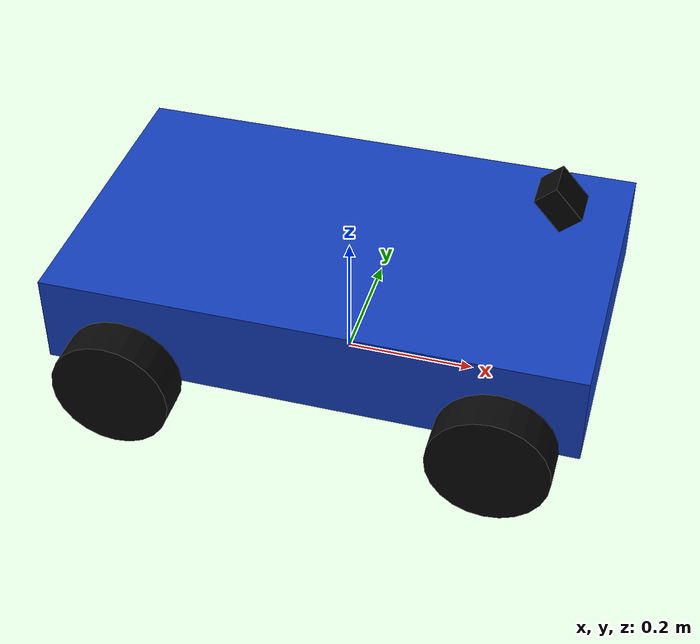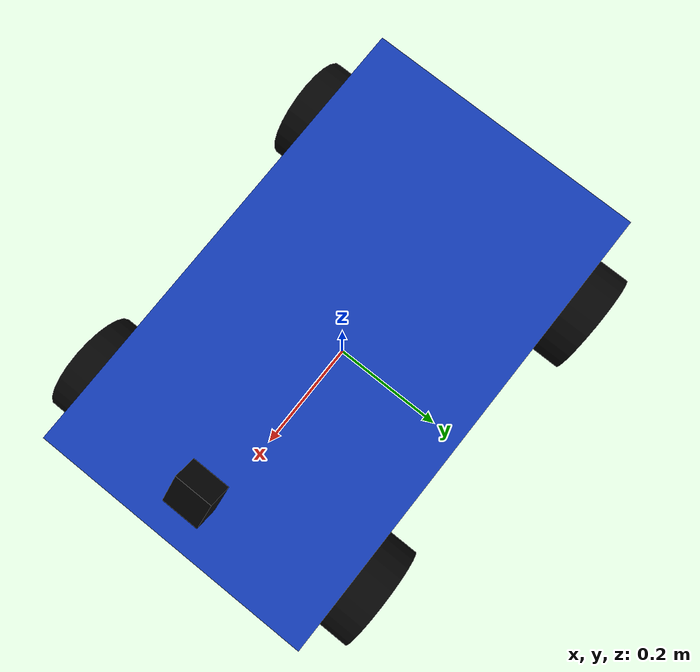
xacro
<?xml version="1.0"?>
<robot name="ackermann_car" xmlns:xacro="http://www.ros.org/wiki/xacro">

  <xacro:arg name="enable_rgbd" default="true"/>
  <xacro:arg name="enable_render_sensors" default="true"/>

  <!-- Keep these dimensions in one place so another chassis can reuse the controller. -->
  <xacro:property name="pi_value" value="3.141592653589793"/>
  <xacro:property name="wheel_radius" value="0.09"/>
  <xacro:property name="wheel_width" value="0.06"/>
  <xacro:property name="wheel_base" value="0.56"/>
  <xacro:property name="wheel_separation" value="0.54"/>
  <xacro:property name="kingpin_width" value="0.50"/>
  <xacro:property name="front_x" value="0.28"/>
  <xacro:property name="rear_x" value="-0.28"/>
  <xacro:property name="wheel_y" value="0.27"/>
  <xacro:property name="wheel_z" value="-0.07"/>
  <xacro:property name="base_height" value="0.16"/>

  <material name="chassis_blue">
    <color rgba="0.08 0.25 0.75 1.0"/>
  </material>
  <material name="wheel_black">
    <color rgba="0.03 0.03 0.03 1.0"/>
  </material>
  <material name="steering_metal">
    <color rgba="0.55 0.58 0.62 1.0"/>
  </material>
  <material name="sensor_black">
    <color rgba="0.02 0.02 0.02 1.0"/>
  </material>

  <xacro:macro name="box_inertial" params="mass x y z">
    <inertial>
      <mass value="${mass}"/>
      <inertia
        ixx="${mass * (y * y + z * z) / 12.0}"
        ixy="0.0"
        ixz="0.0"
        iyy="${mass * (x * x + z * z) / 12.0}"
        iyz="0.0"
        izz="${mass * (x * x + y * y) / 12.0}"/>
    </inertial>
  </xacro:macro>

  <xacro:macro name="wheel_link" params="name">
    <link name="${name}">
      <xacro:cylinder_inertial mass="0.12" radius="${wheel_radius}" length="${wheel_width}"/>
      <visual>
        <origin xyz="0 0 0" rpy="${pi_value / 2.0} 0 0"/>
        <geometry>
          <cylinder radius="${wheel_radius}" length="${wheel_width}"/>
        </geometry>
        <material name="wheel_black"/>
      </visual>
      <collision>
        <origin xyz="0 0 0" rpy="${pi_value / 2.0} 0 0"/>
        <geometry>
          <cylinder radius="${wheel_radius}" length="${wheel_width}"/>
        </geometry>
      </collision>
    </link>
  </xacro:macro>

  <xacro:macro name="cylinder_inertial" params="mass radius length">
    <inertial>
      <mass value="${mass}"/>
      <inertia
        ixx="${mass * (3.0 * radius * radius + length * length) / 12.0}"
        ixy="0.0"
        ixz="0.0"
        iyy="${mass * (3.0 * radius * radius + length * length) / 12.0}"
        iyz="0.0"
        izz="${mass * radius * radius / 2.0}"/>
    </inertial>
  </xacro:macro>

  <!-- Root frame is at ground level, which makes odometry and model replacement predictable. -->
  <link name="base_footprint"/>

  <link name="base_link">
    <xacro:box_inertial mass="1.5" x="0.80" y="0.48" z="0.14"/>
    <visual>
      <geometry>
        <box size="0.80 0.48 0.14"/>
      </geometry>
      <material name="chassis_blue"/>
    </visual>
    <collision>
      <geometry>
        <box size="0.80 0.48 0.14"/>
      </geometry>
    </collision>
  </link>

  <joint name="base_footprint_joint" type="fixed">
    <parent link="base_footprint"/>
    <child link="base_link"/>
    <origin xyz="0 0 ${base_height}" rpy="0 0 0"/>
  </joint>

  <!-- Rear axle: rear-wheel drive. -->
  <xacro:wheel_link name="rear_left_wheel"/>
  <xacro:wheel_link name="rear_right_wheel"/>

  <joint name="rear_left_wheel_joint" type="continuous">
    <parent link="base_link"/>
    <child link="rear_left_wheel"/>
    <origin xyz="${rear_x} ${wheel_y} ${wheel_z}" rpy="0 0 0"/>
    <axis xyz="0 1 0"/>
    <limit effort="100" velocity="50"/>
    <dynamics damping="0.15" friction="0.02"/>
  </joint>

  <joint name="rear_right_wheel_joint" type="continuous">
    <parent link="base_link"/>
    <child link="rear_right_wheel"/>
    <origin xyz="${rear_x} -${wheel_y} ${wheel_z}" rpy="0 0 0"/>
    <axis xyz="0 1 0"/>
    <limit effort="100" velocity="50"/>
    <dynamics damping="0.15" friction="0.02"/>
  </joint>

  <!-- Front axle: each kingpin has an independent steering joint for Ackermann geometry. -->
  <link name="front_left_steering_link">
    <xacro:cylinder_inertial mass="0.04" radius="0.025" length="0.08"/>
    <visual>
      <geometry>
        <cylinder radius="0.025" length="0.08"/>
      </geometry>
      <material name="steering_metal"/>
    </visual>
  </link>
  <link name="front_right_steering_link">
    <xacro:cylinder_inertial mass="0.04" radius="0.025" length="0.08"/>
    <visual>
      <geometry>
        <cylinder radius="0.025" length="0.08"/>
      </geometry>
      <material name="steering_metal"/>
    </visual>
  </link>

  <joint name="front_left_steering_joint" type="revolute">
    <parent link="base_link"/>
    <child link="front_left_steering_link"/>
    <origin xyz="${front_x} ${wheel_y} ${wheel_z}" rpy="0 0 0"/>
    <axis xyz="0 0 1"/>
    <limit lower="-0.55" upper="0.55" effort="80" velocity="5"/>
    <dynamics damping="0.8" friction="0.05"/>
  </joint>

  <joint name="front_right_steering_joint" type="revolute">
    <parent link="base_link"/>
    <child link="front_right_steering_link"/>
    <origin xyz="${front_x} -${wheel_y} ${wheel_z}" rpy="0 0 0"/>
    <axis xyz="0 0 1"/>
    <limit lower="-0.55" upper="0.55" effort="80" velocity="5"/>
    <dynamics damping="0.8" friction="0.05"/>
  </joint>

  <xacro:wheel_link name="front_left_wheel"/>
  <xacro:wheel_link name="front_right_wheel"/>

  <joint name="front_left_wheel_joint" type="continuous">
    <parent link="front_left_steering_link"/>
    <child link="front_left_wheel"/>
    <origin xyz="0 0 0" rpy="0 0 0"/>
    <axis xyz="0 1 0"/>
    <limit effort="100" velocity="50"/>
    <dynamics damping="0.15" friction="0.02"/>
  </joint>

  <joint name="front_right_wheel_joint" type="continuous">
    <parent link="front_right_steering_link"/>
    <child link="front_right_wheel"/>
    <origin xyz="0 0 0" rpy="0 0 0"/>
    <axis xyz="0 1 0"/>
    <limit effort="100" velocity="50"/>
    <dynamics damping="0.15" friction="0.02"/>
  </joint>

  <!-- A small forward/downward-facing RGB camera supplies the line image. -->
  <link name="camera_link">
    <xacro:box_inertial mass="0.03" x="0.06" y="0.06" z="0.04"/>
    <visual>
      <geometry>
        <box size="0.06 0.06 0.04"/>
      </geometry>
      <material name="sensor_black"/>
    </visual>
  </link>

  <joint name="camera_joint" type="fixed">
    <parent link="base_link"/>
    <child link="camera_link"/>
    <!-- Gazebo cameras look along +X at zero pitch; pitch down to keep the line
         in view while retaining enough look-ahead for steering. -->
    <origin xyz="0.31 0 0.19" rpy="0 0.85 0"/>
  </joint>

  <gazebo reference="rear_left_wheel">
    <mu1>1.5</mu1>
    <mu2>1.5</mu2>
  </gazebo>
  <gazebo reference="rear_right_wheel">
    <mu1>1.5</mu1>
    <mu2>1.5</mu2>
  </gazebo>
  <gazebo reference="front_left_wheel">
    <mu1>1.5</mu1>
    <mu2>1.5</mu2>
  </gazebo>
  <gazebo reference="front_right_wheel">
    <mu1>1.5</mu1>
    <mu2>1.5</mu2>
  </gazebo>

  <xacro:if value="$(arg enable_render_sensors)">
  <gazebo reference="camera_link">
    <sensor name="front_camera" type="camera">
      <always_on>true</always_on>
      <update_rate>30</update_rate>
      <visualize>true</visualize>
      <topic>/camera/image_raw</topic>
      <camera>
        <horizontal_fov>1.047</horizontal_fov>
        <image>
          <width>640</width>
          <height>360</height>
          <format>R8G8B8</format>
        </image>
        <clip>
          <near>0.05</near>
          <far>20.0</far>
        </clip>
      </camera>
    </sensor>
  </gazebo>

  <!-- 感知相机水平朝前；光学坐标为右、下、前。 -->
  <link name="rgbd_link"/>
  <joint name="rgbd_joint" type="fixed">
    <parent link="base_link"/><child link="rgbd_link"/>
    <origin xyz="0.36 0 0.25"/>
  </joint>
  <link name="rgbd_optical_frame"/>
  <joint name="rgbd_optical_joint" type="fixed">
    <parent link="rgbd_link"/><child link="rgbd_optical_frame"/>
    <origin rpy="${-pi_value/2} 0 ${-pi_value/2}"/>
  </joint>
  <link name="lidar_link"/>
  <joint name="lidar_joint" type="fixed">
    <parent link="base_link"/><child link="lidar_link"/>
    <origin xyz="0 0 0.36"/>
  </joint>
  <link name="imu_link"/>
  <joint name="imu_joint" type="fixed">
    <parent link="base_link"/><child link="imu_link"/>
    <origin xyz="0 0 0.08"/>
  </joint>
  <gazebo reference="imu_link">
    <sensor name="imu" type="imu">
      <gz_frame_id>imu_link</gz_frame_id>
      <topic>/imu/data_raw</topic>
      <always_on>true</always_on>
      <update_rate>100</update_rate>
      <imu>
        <angular_velocity>
          <x><noise type="gaussian"><mean>0</mean><stddev>0.002</stddev></noise></x>
          <y><noise type="gaussian"><mean>0</mean><stddev>0.002</stddev></noise></y>
          <z><noise type="gaussian"><mean>0</mean><stddev>0.002</stddev></noise></z>
        </angular_velocity>
        <linear_acceleration>
          <x><noise type="gaussian"><mean>0</mean><stddev>0.03</stddev></noise></x>
          <y><noise type="gaussian"><mean>0</mean><stddev>0.03</stddev></noise></y>
          <z><noise type="gaussian"><mean>0</mean><stddev>0.03</stddev></noise></z>
        </linear_acceleration>
      </imu>
    </sensor>
  </gazebo>
  <gazebo reference="lidar_link">
    <sensor name="mid360" type="gpu_lidar">
      <gz_frame_id>lidar_link</gz_frame_id>
      <topic>/scan</topic><always_on>true</always_on><update_rate>10</update_rate>
      <lidar>
        <scan>
          <horizontal><samples>1024</samples><resolution>1</resolution>
          <min_angle>${-pi_value}</min_angle><max_angle>${pi_value}</max_angle>
          </horizontal>
          <!-- MID-360 nominal vertical FOV: -7 to +52 degrees. -->
          <vertical><samples>20</samples><resolution>1</resolution>
            <min_angle>-0.122173</min_angle><max_angle>0.907571</max_angle>
          </vertical>
        </scan>
        <range><min>0.12</min><max>12</max><resolution>0.01</resolution></range>
        <noise><type>gaussian</type><mean>0</mean><stddev>0.01</stddev></noise>
      </lidar>
    </sensor>
  </gazebo>
  <xacro:if value="$(arg enable_rgbd)">
    <gazebo reference="rgbd_link">
      <sensor name="rgbd" type="rgbd_camera">
        <gz_frame_id>rgbd_optical_frame</gz_frame_id>
        <topic>/rgbd</topic><always_on>true</always_on><update_rate>15</update_rate>
        <camera>
          <horizontal_fov>1.211</horizontal_fov>
          <image><width>640</width><height>480</height><format>R8G8B8</format></image>
          <clip><near>0.2</near><far>8</far></clip>
          <depth_camera><clip><near>0.2</near><far>8</far></clip></depth_camera>
        </camera>
      </sensor>
    </gazebo>
  </xacro:if>
  </xacro:if>

  <!-- Gazebo Sim's native Ackermann system is model-name agnostic at runtime. -->
  <gazebo>
    <plugin filename="gz-sim-ackermann-steering-system" name="gz::sim::systems::AckermannSteering">
      <left_joint>front_left_wheel_joint</left_joint>
      <left_joint>rear_left_wheel_joint</left_joint>
      <right_joint>front_right_wheel_joint</right_joint>
      <right_joint>rear_right_wheel_joint</right_joint>
      <left_steering_joint>front_left_steering_joint</left_steering_joint>
      <right_steering_joint>front_right_steering_joint</right_steering_joint>
      <kingpin_width>${kingpin_width}</kingpin_width>
      <steering_limit>0.55</steering_limit>
      <wheel_base>${wheel_base}</wheel_base>
      <wheel_separation>${wheel_separation}</wheel_separation>
      <wheel_radius>${wheel_radius}</wheel_radius>
      <steer_p_gain>1000</steer_p_gain>
      <steer_d_gain>10</steer_d_gain>
      <min_velocity>-0.6</min_velocity>
      <max_velocity>0.6</max_velocity>
      <min_acceleration>-1.5</min_acceleration>
      <max_acceleration>1.5</max_acceleration>
      <odom_publish_frequency>30</odom_publish_frequency>
      <frame_id>odom</frame_id>
      <child_frame_id>base_footprint</child_frame_id>
      <odom_topic>/model/ackermann_car/wheel_odometry</odom_topic>
      <tf_topic>/model/ackermann_car/wheel_tf</tf_topic>
    </plugin>
    <plugin filename="gz-sim-odometry-publisher-system" name="gz::sim::systems::OdometryPublisher">
      <odom_frame>odom</odom_frame>
      <robot_base_frame>base_footprint</robot_base_frame>
      <odom_publish_frequency>30</odom_publish_frequency>
      <odom_topic>/model/ackermann_car/odometry</odom_topic>
      <tf_topic>/model/ackermann_car/ground_truth_tf</tf_topic>
      <dimensions>2</dimensions>
    </plugin>
    <plugin filename="gz-sim-joint-state-publisher-system" name="gz::sim::systems::JointStatePublisher"/>
  </gazebo>

</robot>
